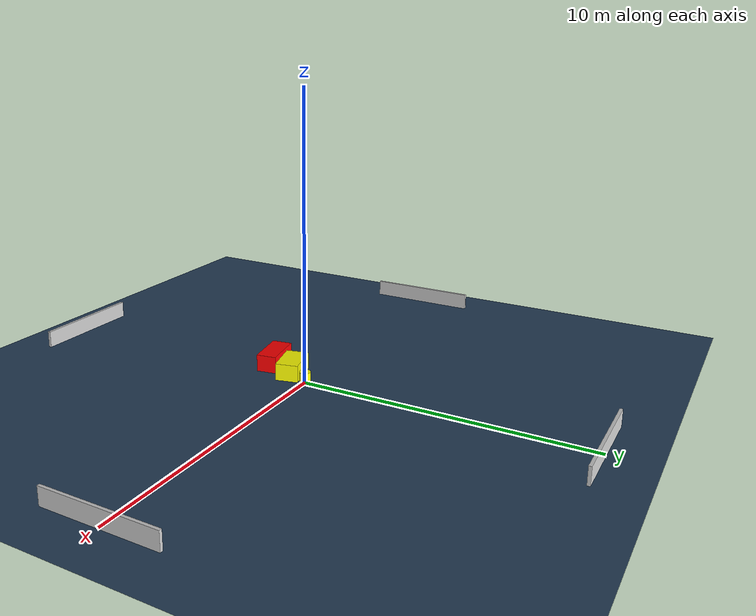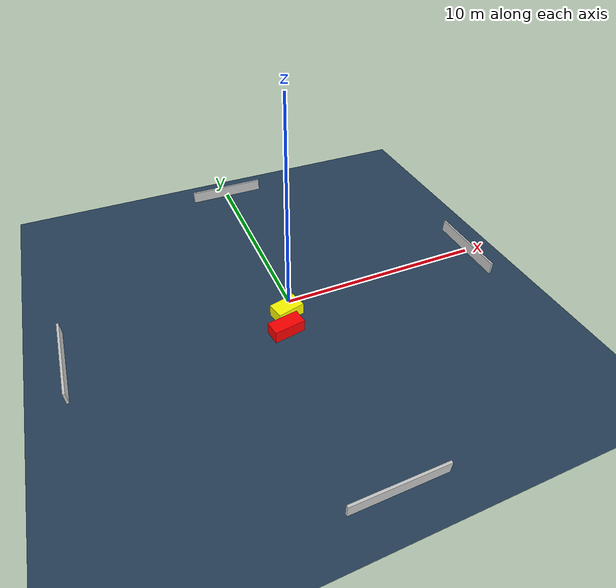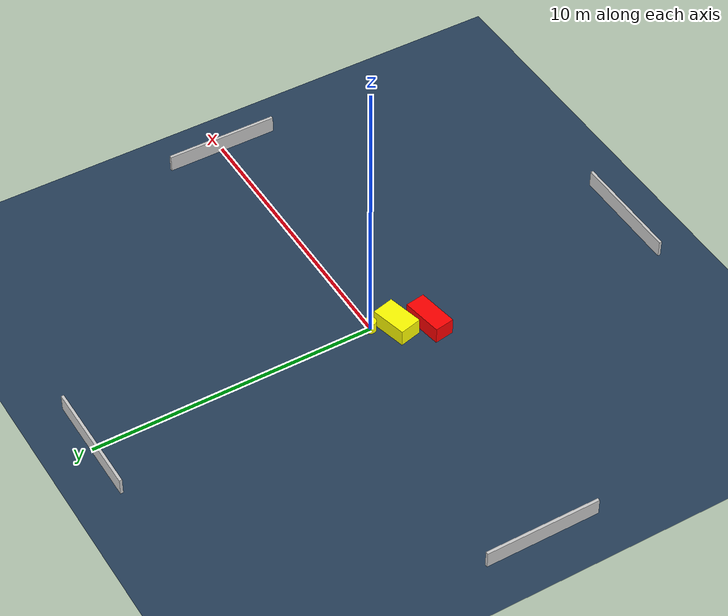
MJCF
<?xml version="1.0" ?>
<mujoco model="generated_environment">
  <option timestep="0.01" integrator="RK4" cone="elliptic"/>
  <default>
    <geom density="1"/>
  </default>
  <asset>
    <texture builtin="gradient" height="3072" name="skybox" rgb1="0.3 0.5 0.7" rgb2="0 0 0" type="skybox" width="512"/>
    <texture builtin="checker" height="300" name="groundplane" rgb1="0.2 0.3 0.4" rgb2="0.1 0.2 0.3" type="2d" width="300"/>
    <material name="groundplane" reflectance="0.2" texrepeat="5 5" texture="groundplane"/>
  </asset>
  <worldbody>
    <light dir="0 0 -1" directional="true" pos="0 0 1.5"/>
    <geom condim="3" friction="0.5 0.005 0.001" material="groundplane" name="floor" pos="0 0 0" size="0 0 0.05" type="plane"/>
    <body name="walls">
      <geom name="wall_1" condim="4" pos="-10.0 0.0 0.3" rgba="0.800000011920929 0.800000011920929 0.800000011920929 1.0" size="0.05 2.0 0.3" type="box"/>
      <geom name="wall_2" condim="4" pos="10.0 0.0 0.3" rgba="0.800000011920929 0.800000011920929 0.800000011920929 1.0" size="0.05 2.0 0.3" type="box"/>
      <geom name="wall_3" condim="4" pos="0.0 -10.0 0.3" rgba="0.800000011920929 0.800000011920929 0.800000011920929 1.0" size="2.0 0.05 0.3" type="box"/>
      <geom name="wall_4" condim="4" pos="0.0 10.0 0.3" rgba="0.800000011920929 0.800000011920929 0.800000011920929 1.0" size="2.0 0.05 0.3" type="box"/>
    </body>
    <body name="robot">
      <joint name="joint_x" type="slide" pos="0 0 0" axis="1 0 0"/>
      <joint name="joint_y" type="slide" pos="0 0 0" axis="0 1 0"/>
      <geom name="robot" type="cylinder" pos="0.0 0.0 0.2" size="0.2 0.2 0.0" mass="5.0" friction="1.0 0.005 0.0001" condim="4" rgba="1.0 1.0 0.0 1.0"/>
    </body>
    <body name="obstacle_1_movable">
      <geom name="obstacle_1_movable" condim="4" pos="-0.3922091378599128 -0.752978428182016 0.3" euler="0 0 103.65562463033618" friction="0.0 0.005 0.001" rgba="1.0 1.0 0.0 1.0" size="0.39566130991464715 0.6460480865594911 0.3" type="box" mass="0.1"/>
      <joint type="free"/>
    </body>
    <body name="obstacle_2_static">
      <geom name="obstacle_2_static" condim="4" pos="-0.8028813301729978 -1.7491006532479871 0.3" euler="0 0 99.21739495281832" friction="0.0 0.005 0.001" rgba="1.0 0.0 0.0 1.0" size="0.34947972303551245 0.7316551357768661 0.3" type="box"/>
    </body>
  </worldbody>
  <actuator>
    <motor name="actuator_x" joint="joint_x" gear="1" ctrlrange="-1 1"/>
    <motor name="actuator_y" joint="joint_y" gear="1" ctrlrange="-1 1"/>
  </actuator>
</mujoco>
